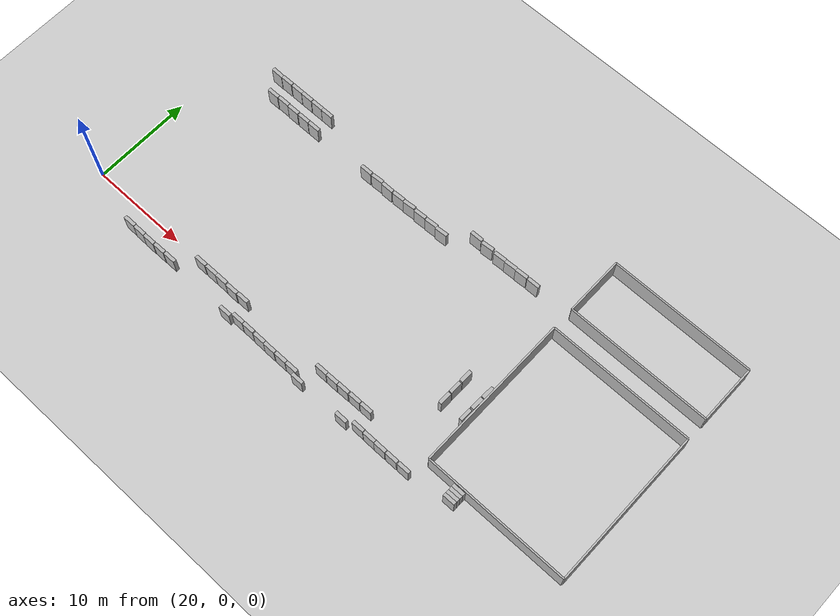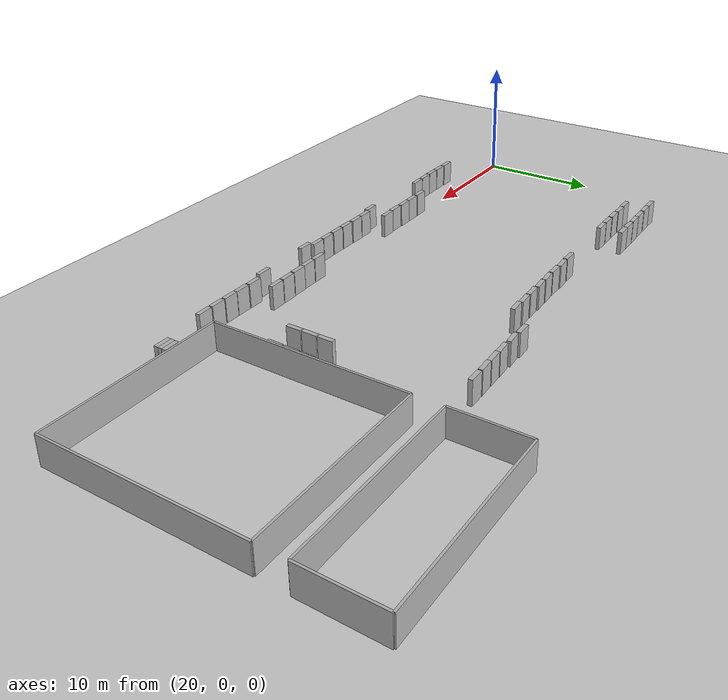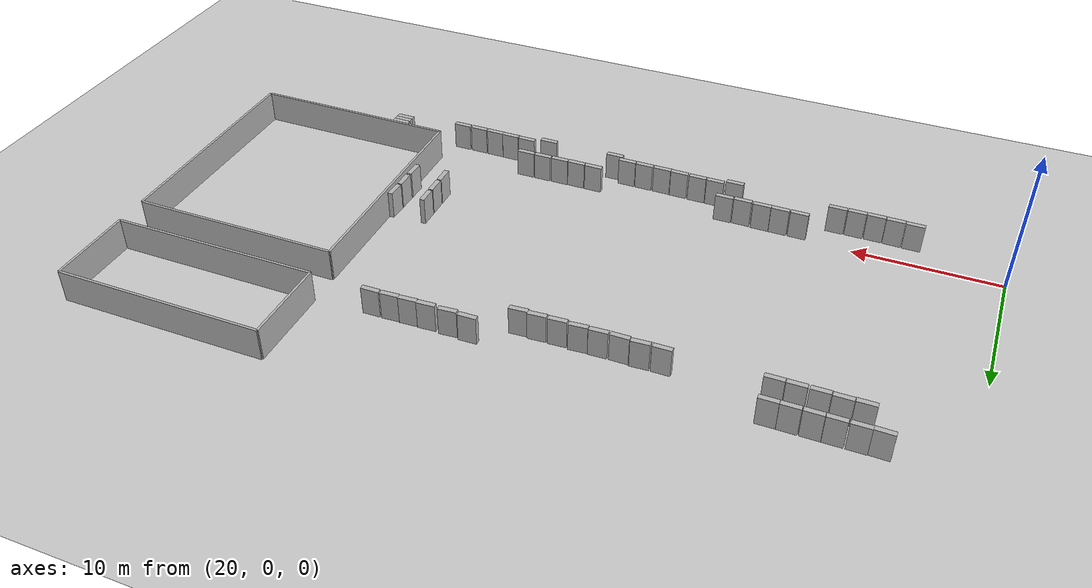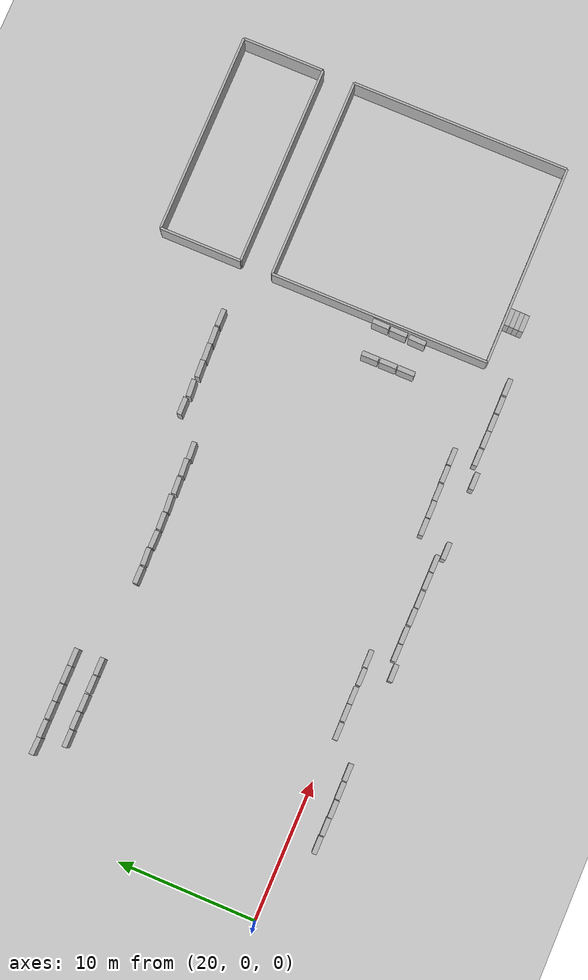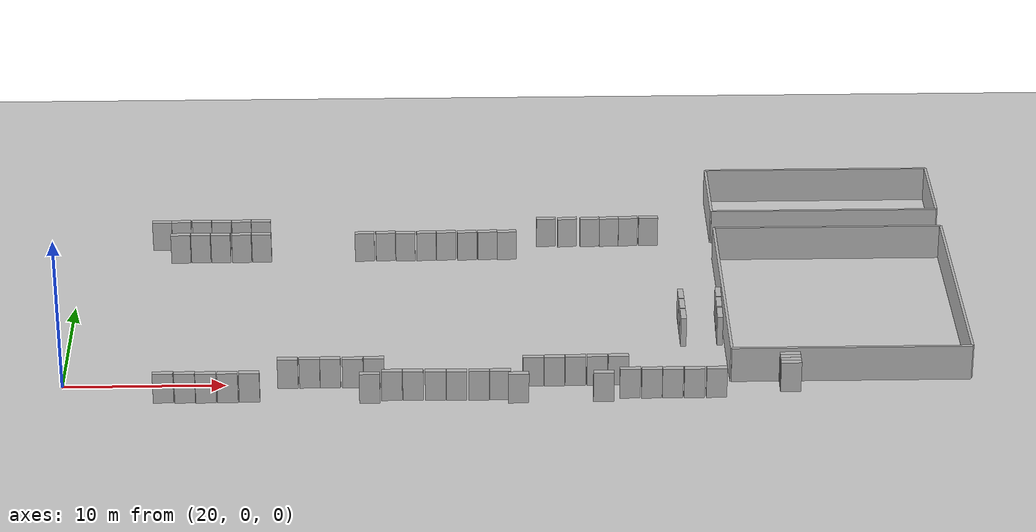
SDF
<sdf version="1.6">
 <world name="default">
  <model name="ground_plane">
   <static>1</static>
   <link name="link">
    <collision name="collision">
     <geometry><plane><normal>0 0 1</normal><size>100 100</size></plane></geometry>
     <surface><friction><ode><mu>100</mu><mu2>50</mu2></ode></friction></surface>
    </collision>
    <visual name="visual">
     <cast_shadows>0</cast_shadows>
     <geometry><plane><normal>0 0 1</normal><size>100 100</size></plane></geometry>
     <material>
      <script><uri>file://media/materials/scripts/gazebo.material</uri><name>Gazebo/Grey</name></script>
     </material>
    </visual>
   </link>
  </model>
  <model name="model_1">
   <pose>60.9 0 1 0 -0 0</pose>
   <link name="Wall_0">
    <pose>7.369 0 0 0 -0 0</pose>
    <collision name="Wall_0_Collision"><geometry><box><size>14.738 0.169 2.5</size></box></geometry></collision>
    <visual name="Wall_0_Visual"><geometry><box><size>14.738 0.169 2.5</size></box></geometry></visual>
   </link>
   <link name="Wall_1">
    <pose>7.369 16 0 0 -0 0</pose>
    <collision name="Wall_1_Collision"><geometry><box><size>14.738 0.169 2.5</size></box></geometry></collision>
    <visual name="Wall_1_Visual"><geometry><box><size>14.738 0.169 2.5</size></box></geometry></visual>
   </link>
   <link name="Wall_2">
    <pose>0 8 0 0 -0 1.5707</pose>
    <collision name="Wall_2_Collision"><geometry><box><size>16 0.169 2.5</size></box></geometry></collision>
    <visual name="Wall_2_Visual"><geometry><box><size>16 0.169 2.5</size></box></geometry></visual>
   </link>
   <link name="Wall_3">
    <pose>14.738 8 0 0 -0 1.5707</pose>
    <collision name="Wall_3_Collision"><geometry><box><size>16 0.169 2.5</size></box></geometry></collision>
    <visual name="Wall_3_Visual"><geometry><box><size>16 0.169 2.5</size></box></geometry></visual>
   </link>
   <static>1</static>
  </model>
  <model name="model_5">
   <pose>60.9 18.362 1 0 -0 0</pose>
   <link name="Wall_0">
    <pose>7.369 0 0 0 -0 0</pose>
    <collision name="Wall_0_Collision"><geometry><box><size>14.738 0.169 2.5</size></box></geometry></collision>
    <visual name="Wall_0_Visual"><geometry><box><size>14.738 0.169 2.5</size></box></geometry></visual>
   </link>
   <link name="Wall_1">
    <pose>7.369 6 0 0 -0 0</pose>
    <collision name="Wall_1_Collision"><geometry><box><size>14.738 0.169 2.5</size></box></geometry></collision>
    <visual name="Wall_1_Visual"><geometry><box><size>14.738 0.169 2.5</size></box></geometry></visual>
   </link>
   <link name="Wall_2">
    <pose>0 3 0 0 -0 1.5707</pose>
    <collision name="Wall_2_Collision"><geometry><box><size>6 0.169 2.5</size></box></geometry></collision>
    <visual name="Wall_2_Visual"><geometry><box><size>6 0.169 2.5</size></box></geometry></visual>
   </link>
   <link name="Wall_3">
    <pose>14.738 3 0 0 -0 1.5707</pose>
    <collision name="Wall_3_Collision"><geometry><box><size>6 0.169 2.5</size></box></geometry></collision>
    <visual name="Wall_3_Visual"><geometry><box><size>6 0.169 2.5</size></box></geometry></visual>
   </link>
   <static>1</static>
  </model>
  <model name="unit_box_clone_0">
   <pose>26.3118 -1.88538 0.999997 0 -6e-06 -0.000111</pose>
   <link name="link">
    <inertial>
     <mass>1</mass>
     <inertia>
      <ixx>0.166667</ixx>
      <ixy>0</ixy>
      <ixz>0</ixz>
      <iyy>0.166667</iyy>
      <iyz>0</iyz>
      <izz>0.166667</izz>
     </inertia>
    </inertial>
    <collision name="collision"><geometry><box><size>1.25 0.35 2</size></box></geometry></collision>
    <visual name="visual"><geometry><box><size>1.25 0.35 2</size></box></geometry></visual>
   </link>
  </model>
  <model name="unit_box_clone_6">
   <pose>54.6046 -1.902 0.999998 0 3e-06 6.1e-05</pose>
   <link name="link">
    <inertial>
     <mass>1</mass>
     <inertia>
      <ixx>0.166667</ixx>
      <ixy>0</ixy>
      <ixz>0</ixz>
      <iyy>0.166667</iyy>
      <iyz>0</iyz>
      <izz>0.166667</izz>
     </inertia>
    </inertial>
    <collision name="collision"><geometry><box><size>1.25 0.35 2</size></box></geometry></collision>
    <visual name="visual"><geometry><box><size>1.25 0.35 2</size></box></geometry></visual>
   </link>
  </model>
  <model name="unit_box_clone_11_clone_0">
   <pose>56.7525 18.0942 1 0 -0 0.013152</pose>
   <link name="link">
    <inertial>
     <mass>1</mass>
     <inertia>
      <ixx>0.166667</ixx>
      <ixy>0</ixy>
      <ixz>0</ixz>
      <iyy>0.166667</iyy>
      <iyz>0</iyz>
      <izz>0.166667</izz>
     </inertia>
    </inertial>
    <collision name="collision"><geometry><box><size>1.25 0.35 2</size></box></geometry></collision>
    <visual name="visual"><geometry><box><size>1.25 0.35 2</size></box></geometry></visual>
   </link>
  </model>
  <model name="unit_box_clone_11_clone_1">
   <pose>55.4195 18.0661 0.999998 0 4e-06 0.055918</pose>
   <link name="link">
    <inertial>
     <mass>1</mass>
     <inertia>
      <ixx>0.166667</ixx>
      <ixy>0</ixy>
      <ixz>0</ixz>
      <iyy>0.166667</iyy>
      <iyz>0</iyz>
      <izz>0.166667</izz>
     </inertia>
    </inertial>
    <collision name="collision"><geometry><box><size>1.25 0.35 2</size></box></geometry></collision>
    <visual name="visual"><geometry><box><size>1.25 0.35 2</size></box></geometry></visual>
   </link>
  </model>
  <model name="unit_box_clone_11_clone_2">
   <pose>54.1686 18.0364 0.999995 0 2e-06 0.056728</pose>
   <link name="link">
    <inertial>
     <mass>1</mass>
     <inertia>
      <ixx>0.166667</ixx>
      <ixy>0</ixy>
      <ixz>0</ixz>
      <iyy>0.166667</iyy>
      <iyz>0</iyz>
      <izz>0.166667</izz>
     </inertia>
    </inertial>
    <collision name="collision"><geometry><box><size>1.25 0.35 2</size></box></geometry></collision>
    <visual name="visual"><geometry><box><size>1.25 0.35 2</size></box></geometry></visual>
   </link>
  </model>
  <model name="unit_box_clone_11_clone_3">
   <pose>52.9179 18.008 0.999998 0 -3e-06 0.056653</pose>
   <link name="link">
    <inertial>
     <mass>1</mass>
     <inertia>
      <ixx>0.166667</ixx>
      <ixy>0</ixy>
      <ixz>0</ixz>
      <iyy>0.166667</iyy>
      <iyz>0</iyz>
      <izz>0.166667</izz>
     </inertia>
    </inertial>
    <collision name="collision"><geometry><box><size>1.25 0.35 2</size></box></geometry></collision>
    <visual name="visual"><geometry><box><size>1.25 0.35 2</size></box></geometry></visual>
   </link>
  </model>
  <model name="unit_box_clone_11_clone_4">
   <pose>51.4407 18.0271 0.999996 0 2e-06 0.07833</pose>
   <link name="link">
    <inertial>
     <mass>1</mass>
     <inertia>
      <ixx>0.166667</ixx>
      <ixy>0</ixy>
      <ixz>0</ixz>
      <iyy>0.166667</iyy>
      <iyz>0</iyz>
      <izz>0.166667</izz>
     </inertia>
    </inertial>
    <collision name="collision"><geometry><box><size>1.25 0.35 2</size></box></geometry></collision>
    <visual name="visual"><geometry><box><size>1.25 0.35 2</size></box></geometry></visual>
   </link>
  </model>
  <model name="unit_box_clone_11_clone_5">
   <pose>50.0739 18.0916 1 0 -0 0.01582</pose>
   <link name="link">
    <inertial>
     <mass>1</mass>
     <inertia>
      <ixx>0.166667</ixx>
      <ixy>0</ixy>
      <ixz>0</ixz>
      <iyy>0.166667</iyy>
      <iyz>0</iyz>
      <izz>0.166667</izz>
     </inertia>
    </inertial>
    <collision name="collision"><geometry><box><size>1.25 0.35 2</size></box></geometry></collision>
    <visual name="visual"><geometry><box><size>1.25 0.35 2</size></box></geometry></visual>
   </link>
  </model>
  <model name="unit_box_clone_11_clone_6">
   <pose>47.4592 16.3049 1 0 -1e-06 0.0693</pose>
   <link name="link">
    <inertial>
     <mass>1</mass>
     <inertia>
      <ixx>0.166667</ixx>
      <ixy>0</ixy>
      <ixz>0</ixz>
      <iyy>0.166667</iyy>
      <iyz>0</iyz>
      <izz>0.166667</izz>
     </inertia>
    </inertial>
    <collision name="collision"><geometry><box><size>1.25 0.35 2</size></box></geometry></collision>
    <visual name="visual"><geometry><box><size>1.25 0.35 2</size></box></geometry></visual>
   </link>
  </model>
  <model name="unit_box_clone_11_clone_7">
   <pose>46.2039 16.332 1 -1e-06 -0 0.070592</pose>
   <link name="link">
    <inertial>
     <mass>1</mass>
     <inertia>
      <ixx>0.166667</ixx>
      <ixy>0</ixy>
      <ixz>0</ixz>
      <iyy>0.166667</iyy>
      <iyz>0</iyz>
      <izz>0.166667</izz>
     </inertia>
    </inertial>
    <collision name="collision"><geometry><box><size>1.25 0.35 2</size></box></geometry></collision>
    <visual name="visual"><geometry><box><size>1.25 0.35 2</size></box></geometry></visual>
   </link>
  </model>
  <model name="unit_box_clone_11_clone_8">
   <pose>44.8815 16.2979 0.999996 0 2e-06 0.058553</pose>
   <link name="link">
    <inertial>
     <mass>1</mass>
     <inertia>
      <ixx>0.166667</ixx>
      <ixy>0</ixy>
      <ixz>0</ixz>
      <iyy>0.166667</iyy>
      <iyz>0</iyz>
      <izz>0.166667</izz>
     </inertia>
    </inertial>
    <collision name="collision"><geometry><box><size>1.25 0.35 2</size></box></geometry></collision>
    <visual name="visual"><geometry><box><size>1.25 0.35 2</size></box></geometry></visual>
   </link>
  </model>
  <model name="unit_box_clone_11_clone_9">
   <pose>43.5275 16.3169 0.999997 0 6e-06 0.079775</pose>
   <link name="link">
    <inertial>
     <mass>1</mass>
     <inertia>
      <ixx>0.166667</ixx>
      <ixy>0</ixy>
      <ixz>0</ixz>
      <iyy>0.166667</iyy>
      <iyz>0</iyz>
      <izz>0.166667</izz>
     </inertia>
    </inertial>
    <collision name="collision"><geometry><box><size>1.25 0.35 2</size></box></geometry></collision>
    <visual name="visual"><geometry><box><size>1.25 0.35 2</size></box></geometry></visual>
   </link>
  </model>
  <model name="unit_box_clone_11_clone_10">
   <pose>42.2463 16.2883 0.999998 0 -4e-06 0.045982</pose>
   <link name="link">
    <inertial>
     <mass>1</mass>
     <inertia>
      <ixx>0.166667</ixx>
      <ixy>0</ixy>
      <ixz>0</ixz>
      <iyy>0.166667</iyy>
      <iyz>0</iyz>
      <izz>0.166667</izz>
     </inertia>
    </inertial>
    <collision name="collision"><geometry><box><size>1.25 0.35 2</size></box></geometry></collision>
    <visual name="visual"><geometry><box><size>1.25 0.35 2</size></box></geometry></visual>
   </link>
  </model>
  <model name="unit_box_clone_11_clone_11">
   <pose>40.894 16.2613 0.999996 0 6e-06 -1.3e-05</pose>
   <link name="link">
    <inertial>
     <mass>1</mass>
     <inertia>
      <ixx>0.166667</ixx>
      <ixy>0</ixy>
      <ixz>0</ixz>
      <iyy>0.166667</iyy>
      <iyz>0</iyz>
      <izz>0.166667</izz>
     </inertia>
    </inertial>
    <collision name="collision"><geometry><box><size>1.25 0.35 2</size></box></geometry></collision>
    <visual name="visual"><geometry><box><size>1.25 0.35 2</size></box></geometry></visual>
   </link>
  </model>
  <model name="unit_box_clone_11_clone_12">
   <pose>39.5983 16.3008 0.999998 0 3e-06 0.054722</pose>
   <link name="link">
    <inertial>
     <mass>1</mass>
     <inertia>
      <ixx>0.166667</ixx>
      <ixy>0</ixy>
      <ixz>0</ixz>
      <iyy>0.166667</iyy>
      <iyz>0</iyz>
      <izz>0.166667</izz>
     </inertia>
    </inertial>
    <collision name="collision"><geometry><box><size>1.25 0.35 2</size></box></geometry></collision>
    <visual name="visual"><geometry><box><size>1.25 0.35 2</size></box></geometry></visual>
   </link>
  </model>
  <model name="unit_box_clone_11_clone_13">
   <pose>38.2509 16.2695 0.999997 1e-06 5e-06 0.003888</pose>
   <link name="link">
    <inertial>
     <mass>1</mass>
     <inertia>
      <ixx>0.166667</ixx>
      <ixy>0</ixy>
      <ixz>0</ixz>
      <iyy>0.166667</iyy>
      <iyz>0</iyz>
      <izz>0.166667</izz>
     </inertia>
    </inertial>
    <collision name="collision"><geometry><box><size>1.25 0.35 2</size></box></geometry></collision>
    <visual name="visual"><geometry><box><size>1.25 0.35 2</size></box></geometry></visual>
   </link>
  </model>
  <model name="unit_box_clone_1_clone_6">
   <pose>27.6215 -1.91658 0.999996 0 6e-06 2.3e-05</pose>
   <link name="link">
    <inertial>
     <mass>1</mass>
     <inertia>
      <ixx>0.166667</ixx>
      <ixy>0</ixy>
      <ixz>0</ixz>
      <iyy>0.166667</iyy>
      <iyz>0</iyz>
      <izz>0.166667</izz>
     </inertia>
    </inertial>
    <collision name="collision"><geometry><box><size>1.25 0.35 2</size></box></geometry></collision>
    <visual name="visual"><geometry><box><size>1.25 0.35 2</size></box></geometry></visual>
   </link>
  </model>
  <model name="unit_box_clone_1_clone_8">
   <pose>28.8992 -1.9425 1 1e-06 -0 0</pose>
   <link name="link">
    <inertial>
     <mass>1</mass>
     <inertia>
      <ixx>0.166667</ixx>
      <ixy>0</ixy>
      <ixz>0</ixz>
      <iyy>0.166667</iyy>
      <iyz>0</iyz>
      <izz>0.166667</izz>
     </inertia>
    </inertial>
    <collision name="collision"><geometry><box><size>1.25 0.35 2</size></box></geometry></collision>
    <visual name="visual"><geometry><box><size>1.25 0.35 2</size></box></geometry></visual>
   </link>
  </model>
  <model name="unit_box_clone_1_clone_9">
   <pose>30.2126 -1.92359 0.999996 0 6e-06 -1.4e-05</pose>
   <link name="link">
    <inertial>
     <mass>1</mass>
     <inertia>
      <ixx>0.166667</ixx>
      <ixy>0</ixy>
      <ixz>0</ixz>
      <iyy>0.166667</iyy>
      <iyz>0</iyz>
      <izz>0.166667</izz>
     </inertia>
    </inertial>
    <collision name="collision"><geometry><box><size>1.25 0.35 2</size></box></geometry></collision>
    <visual name="visual"><geometry><box><size>1.25 0.35 2</size></box></geometry></visual>
   </link>
  </model>
  <model name="unit_box_clone_1_clone_10">
   <pose>31.5258 -1.90826 0.999998 0 -3e-06 -6.1e-05</pose>
   <link name="link">
    <inertial>
     <mass>1</mass>
     <inertia>
      <ixx>0.166667</ixx>
      <ixy>0</ixy>
      <ixz>0</ixz>
      <iyy>0.166667</iyy>
      <iyz>0</iyz>
      <izz>0.166667</izz>
     </inertia>
    </inertial>
    <collision name="collision"><geometry><box><size>1.25 0.35 2</size></box></geometry></collision>
    <visual name="visual"><geometry><box><size>1.25 0.35 2</size></box></geometry></visual>
   </link>
  </model>
  <model name="unit_box_clone_1_clone_7">
   <pose>40.1545 -1.88356 0.999996 -0 -6e-06 -1.3e-05</pose>
   <link name="link">
    <inertial>
     <mass>1</mass>
     <inertia>
      <ixx>0.166667</ixx>
      <ixy>0</ixy>
      <ixz>0</ixz>
      <iyy>0.166667</iyy>
      <iyz>0</iyz>
      <izz>0.166667</izz>
     </inertia>
    </inertial>
    <collision name="collision"><geometry><box><size>1.25 0.35 2</size></box></geometry></collision>
    <visual name="visual"><geometry><box><size>1.25 0.35 2</size></box></geometry></visual>
   </link>
  </model>
  <model name="unit_box_clone_1_clone_16">
   <pose>41.444 -1.88485 0.999996 -0 2e-06 -8.6e-05</pose>
   <link name="link">
    <inertial>
     <mass>1</mass>
     <inertia>
      <ixx>0.166667</ixx>
      <ixy>0</ixy>
      <ixz>0</ixz>
      <iyy>0.166667</iyy>
      <iyz>0</iyz>
      <izz>0.166667</izz>
     </inertia>
    </inertial>
    <collision name="collision"><geometry><box><size>1.25 0.35 2</size></box></geometry></collision>
    <visual name="visual"><geometry><box><size>1.25 0.35 2</size></box></geometry></visual>
   </link>
  </model>
  <model name="unit_box_clone_1_clone_17">
   <pose>42.7968 -1.91646 1 -1e-06 -0 1e-05</pose>
   <link name="link">
    <inertial>
     <mass>1</mass>
     <inertia>
      <ixx>0.166667</ixx>
      <ixy>0</ixy>
      <ixz>0</ixz>
      <iyy>0.166667</iyy>
      <iyz>0</iyz>
      <izz>0.166667</izz>
     </inertia>
    </inertial>
    <collision name="collision"><geometry><box><size>1.25 0.35 2</size></box></geometry></collision>
    <visual name="visual"><geometry><box><size>1.25 0.35 2</size></box></geometry></visual>
   </link>
  </model>
  <model name="unit_box_clone_1_clone_18">
   <pose>44.0856 -1.94196 0.999996 0 -6e-06 5.5e-05</pose>
   <link name="link">
    <inertial>
     <mass>1</mass>
     <inertia>
      <ixx>0.166667</ixx>
      <ixy>0</ixy>
      <ixz>0</ixz>
      <iyy>0.166667</iyy>
      <iyz>0</iyz>
      <izz>0.166667</izz>
     </inertia>
    </inertial>
    <collision name="collision"><geometry><box><size>1.25 0.35 2</size></box></geometry></collision>
    <visual name="visual"><geometry><box><size>1.25 0.35 2</size></box></geometry></visual>
   </link>
  </model>
  <model name="unit_box_clone_1_clone_19">
   <pose>45.4366 -1.94203 0.999996 0 6e-06 -3.6e-05</pose>
   <link name="link">
    <inertial>
     <mass>1</mass>
     <inertia>
      <ixx>0.166667</ixx>
      <ixy>0</ixy>
      <ixz>0</ixz>
      <iyy>0.166667</iyy>
      <iyz>0</iyz>
      <izz>0.166667</izz>
     </inertia>
    </inertial>
    <collision name="collision"><geometry><box><size>1.25 0.35 2</size></box></geometry></collision>
    <visual name="visual"><geometry><box><size>1.25 0.35 2</size></box></geometry></visual>
   </link>
  </model>
  <model name="unit_box_clone_1_clone_22">
   <pose>46.7262 -1.94249 1 -0 -0 -4.8e-05</pose>
   <link name="link">
    <inertial>
     <mass>1</mass>
     <inertia>
      <ixx>0.166667</ixx>
      <ixy>0</ixy>
      <ixz>0</ixz>
      <iyy>0.166667</iyy>
      <iyz>0</iyz>
      <izz>0.166667</izz>
     </inertia>
    </inertial>
    <collision name="collision"><geometry><box><size>1.25 0.35 2</size></box></geometry></collision>
    <visual name="visual"><geometry><box><size>1.25 0.35 2</size></box></geometry></visual>
   </link>
  </model>
  <model name="unit_box_clone_1_clone_23">
   <pose>33.7971 -0.269884 1 -1e-06 -0 4e-06</pose>
   <link name="link">
    <inertial>
     <mass>1</mass>
     <inertia>
      <ixx>0.166667</ixx>
      <ixy>0</ixy>
      <ixz>0</ixz>
      <iyy>0.166667</iyy>
      <iyz>0</iyz>
      <izz>0.166667</izz>
     </inertia>
    </inertial>
    <collision name="collision"><geometry><box><size>1.25 0.35 2</size></box></geometry></collision>
    <visual name="visual"><geometry><box><size>1.25 0.35 2</size></box></geometry></visual>
   </link>
  </model>
  <model name="unit_box_clone_1_clone_24">
   <pose>35.1254 -0.260039 1 -1e-06 0 1.8e-05</pose>
   <link name="link">
    <inertial>
     <mass>1</mass>
     <inertia>
      <ixx>0.166667</ixx>
      <ixy>0</ixy>
      <ixz>0</ixz>
      <iyy>0.166667</iyy>
      <iyz>0</iyz>
      <izz>0.166667</izz>
     </inertia>
    </inertial>
    <collision name="collision"><geometry><box><size>1.25 0.35 2</size></box></geometry></collision>
    <visual name="visual"><geometry><box><size>1.25 0.35 2</size></box></geometry></visual>
   </link>
  </model>
  <model name="unit_box_clone_1_clone_25">
   <pose>36.3934 -0.260366 0.999996 0 -6e-06 4e-05</pose>
   <link name="link">
    <inertial>
     <mass>1</mass>
     <inertia>
      <ixx>0.166667</ixx>
      <ixy>0</ixy>
      <ixz>0</ixz>
      <iyy>0.166667</iyy>
      <iyz>0</iyz>
      <izz>0.166667</izz>
     </inertia>
    </inertial>
    <collision name="collision"><geometry><box><size>1.25 0.35 2</size></box></geometry></collision>
    <visual name="visual"><geometry><box><size>1.25 0.35 2</size></box></geometry></visual>
   </link>
  </model>
  <model name="unit_box_clone_1_clone_26">
   <pose>37.7551 -0.304386 0.999996 0 6e-06 4.3e-05</pose>
   <link name="link">
    <inertial>
     <mass>1</mass>
     <inertia>
      <ixx>0.166667</ixx>
      <ixy>0</ixy>
      <ixz>0</ixz>
      <iyy>0.166667</iyy>
      <iyz>0</iyz>
      <izz>0.166667</izz>
     </inertia>
    </inertial>
    <collision name="collision"><geometry><box><size>1.25 0.35 2</size></box></geometry></collision>
    <visual name="visual"><geometry><box><size>1.25 0.35 2</size></box></geometry></visual>
   </link>
  </model>
  <model name="unit_box_clone_1_clone_27">
   <pose>39.0548 -0.260579 0.999998 0 -3e-06 -2.9e-05</pose>
   <link name="link">
    <inertial>
     <mass>1</mass>
     <inertia>
      <ixx>0.166667</ixx>
      <ixy>0</ixy>
      <ixz>0</ixz>
      <iyy>0.166667</iyy>
      <iyz>0</iyz>
      <izz>0.166667</izz>
     </inertia>
    </inertial>
    <collision name="collision"><geometry><box><size>1.25 0.35 2</size></box></geometry></collision>
    <visual name="visual"><geometry><box><size>1.25 0.35 2</size></box></geometry></visual>
   </link>
  </model>
  <model name="unit_box_clone_1_clone_28">
   <pose>48.7566 -0.324881 0.999996 0 -6e-06 1.9e-05</pose>
   <link name="link">
    <inertial>
     <mass>1</mass>
     <inertia>
      <ixx>0.166667</ixx>
      <ixy>0</ixy>
      <ixz>0</ixz>
      <iyy>0.166667</iyy>
      <iyz>0</iyz>
      <izz>0.166667</izz>
     </inertia>
    </inertial>
    <collision name="collision"><geometry><box><size>1.25 0.35 2</size></box></geometry></collision>
    <visual name="visual"><geometry><box><size>1.25 0.35 2</size></box></geometry></visual>
   </link>
  </model>
  <model name="unit_box_clone_1_clone_29">
   <pose>50.0592 -0.326024 0.999996 0 -6e-06 4.6e-05</pose>
   <link name="link">
    <inertial>
     <mass>1</mass>
     <inertia>
      <ixx>0.166667</ixx>
      <ixy>0</ixy>
      <ixz>0</ixz>
      <iyy>0.166667</iyy>
      <iyz>0</iyz>
      <izz>0.166667</izz>
     </inertia>
    </inertial>
    <collision name="collision"><geometry><box><size>1.25 0.35 2</size></box></geometry></collision>
    <visual name="visual"><geometry><box><size>1.25 0.35 2</size></box></geometry></visual>
   </link>
  </model>
  <model name="unit_box_clone_1_clone_30">
   <pose>51.3296 -0.296932 0.999996 0 6e-06 -3.6e-05</pose>
   <link name="link">
    <inertial>
     <mass>1</mass>
     <inertia>
      <ixx>0.166667</ixx>
      <ixy>0</ixy>
      <ixz>0</ixz>
      <iyy>0.166667</iyy>
      <iyz>0</iyz>
      <izz>0.166667</izz>
     </inertia>
    </inertial>
    <collision name="collision"><geometry><box><size>1.25 0.35 2</size></box></geometry></collision>
    <visual name="visual"><geometry><box><size>1.25 0.35 2</size></box></geometry></visual>
   </link>
  </model>
  <model name="unit_box_clone_1_clone_31">
   <pose>52.6602 -0.26924 0.999996 -0 -2e-06 8.4e-05</pose>
   <link name="link">
    <inertial>
     <mass>1</mass>
     <inertia>
      <ixx>0.166667</ixx>
      <ixy>0</ixy>
      <ixz>0</ixz>
      <iyy>0.166667</iyy>
      <iyz>0</iyz>
      <izz>0.166667</izz>
     </inertia>
    </inertial>
    <collision name="collision"><geometry><box><size>1.25 0.35 2</size></box></geometry></collision>
    <visual name="visual"><geometry><box><size>1.25 0.35 2</size></box></geometry></visual>
   </link>
  </model>
  <model name="unit_box_clone_1_clone_32">
   <pose>53.9646 -0.259585 1 0 -0 0.000135</pose>
   <link name="link">
    <inertial>
     <mass>1</mass>
     <inertia>
      <ixx>0.166667</ixx>
      <ixy>0</ixy>
      <ixz>0</ixz>
      <iyy>0.166667</iyy>
      <iyz>0</iyz>
      <izz>0.166667</izz>
     </inertia>
    </inertial>
    <collision name="collision"><geometry><box><size>1.25 0.35 2</size></box></geometry></collision>
    <visual name="visual"><geometry><box><size>1.25 0.35 2</size></box></geometry></visual>
   </link>
  </model>
  <model name="unit_box_clone_1_clone_33">
   <pose>55.9279 -1.93098 0.999996 0 -6e-06 1.8e-05</pose>
   <link name="link">
    <inertial>
     <mass>1</mass>
     <inertia>
      <ixx>0.166667</ixx>
      <ixy>0</ixy>
      <ixz>0</ixz>
      <iyy>0.166667</iyy>
      <iyz>0</iyz>
      <izz>0.166667</izz>
     </inertia>
    </inertial>
    <collision name="collision"><geometry><box><size>1.25 0.35 2</size></box></geometry></collision>
    <visual name="visual"><geometry><box><size>1.25 0.35 2</size></box></geometry></visual>
   </link>
  </model>
  <model name="unit_box_clone_1_clone_34">
   <pose>57.191 -1.94229 1 0 -0 0.000143</pose>
   <link name="link">
    <inertial>
     <mass>1</mass>
     <inertia>
      <ixx>0.166667</ixx>
      <ixy>0</ixy>
      <ixz>0</ixz>
      <iyy>0.166667</iyy>
      <iyz>0</iyz>
      <izz>0.166667</izz>
     </inertia>
    </inertial>
    <collision name="collision"><geometry><box><size>1.25 0.35 2</size></box></geometry></collision>
    <visual name="visual"><geometry><box><size>1.25 0.35 2</size></box></geometry></visual>
   </link>
  </model>
  <model name="unit_box_clone_1_clone_35">
   <pose>58.515 -1.94236 0.999998 -0 -4e-06 -0.000153</pose>
   <link name="link">
    <inertial>
     <mass>1</mass>
     <inertia>
      <ixx>0.166667</ixx>
      <ixy>0</ixy>
      <ixz>0</ixz>
      <iyy>0.166667</iyy>
      <iyz>0</iyz>
      <izz>0.166667</izz>
     </inertia>
    </inertial>
    <collision name="collision"><geometry><box><size>1.25 0.35 2</size></box></geometry></collision>
    <visual name="visual"><geometry><box><size>1.25 0.35 2</size></box></geometry></visual>
   </link>
  </model>
  <model name="unit_box_clone_1_clone_36">
   <pose>59.8662 -1.93541 1 -1e-06 0 -3e-06</pose>
   <link name="link">
    <inertial>
     <mass>1</mass>
     <inertia>
      <ixx>0.166667</ixx>
      <ixy>0</ixy>
      <ixz>0</ixz>
      <iyy>0.166667</iyy>
      <iyz>0</iyz>
      <izz>0.166667</izz>
     </inertia>
    </inertial>
    <collision name="collision"><geometry><box><size>1.25 0.35 2</size></box></geometry></collision>
    <visual name="visual"><geometry><box><size>1.25 0.35 2</size></box></geometry></visual>
   </link>
  </model>
  <model name="unit_box_clone_1_clone_37">
   <pose>64.4557 -0.259713 0.999996 0 -2e-06 -9.7e-05</pose>
   <link name="link">
    <inertial>
     <mass>1</mass>
     <inertia>
      <ixx>0.166667</ixx>
      <ixy>0</ixy>
      <ixz>0</ixz>
      <iyy>0.166667</iyy>
      <iyz>0</iyz>
      <izz>0.166667</izz>
     </inertia>
    </inertial>
    <collision name="collision"><geometry><box><size>1.25 0.35 2</size></box></geometry></collision>
    <visual name="visual"><geometry><box><size>1.25 0.35 2</size></box></geometry></visual>
   </link>
  </model>
  <model name="unit_box_clone_1_clone_38">
   <pose>64.4499 -0.609721 0.999996 0 -2e-06 -9.5e-05</pose>
   <link name="link">
    <inertial>
     <mass>1</mass>
     <inertia>
      <ixx>0.166667</ixx>
      <ixy>0</ixy>
      <ixz>0</ixz>
      <iyy>0.166667</iyy>
      <iyz>0</iyz>
      <izz>0.166667</izz>
     </inertia>
    </inertial>
    <collision name="collision"><geometry><box><size>1.25 0.35 2</size></box></geometry></collision>
    <visual name="visual"><geometry><box><size>1.25 0.35 2</size></box></geometry></visual>
   </link>
  </model>
  <model name="unit_box_clone_1_clone_39">
   <pose>64.4459 -0.95993 0.999996 -0 -2e-06 2.4e-05</pose>
   <link name="link">
    <inertial>
     <mass>1</mass>
     <inertia>
      <ixx>0.166667</ixx>
      <ixy>0</ixy>
      <ixz>0</ixz>
      <iyy>0.166667</iyy>
      <iyz>0</iyz>
      <izz>0.166667</izz>
     </inertia>
    </inertial>
    <collision name="collision"><geometry><box><size>1.25 0.35 2</size></box></geometry></collision>
    <visual name="visual"><geometry><box><size>1.25 0.35 2</size></box></geometry></visual>
   </link>
  </model>
  <model name="unit_box_clone_1_clone_40">
   <pose>64.4382 -1.31008 1 -1e-06 -0 -6e-06</pose>
   <link name="link">
    <inertial>
     <mass>1</mass>
     <inertia>
      <ixx>0.166667</ixx>
      <ixy>0</ixy>
      <ixz>0</ixz>
      <iyy>0.166667</iyy>
      <iyz>0</iyz>
      <izz>0.166667</izz>
     </inertia>
    </inertial>
    <collision name="collision"><geometry><box><size>1.25 0.35 2</size></box></geometry></collision>
    <visual name="visual"><geometry><box><size>1.25 0.35 2</size></box></geometry></visual>
   </link>
  </model>
  <model name="unit_box_clone_1_clone_41">
   <pose>25.0388 18.0857 1 -0 1e-06 -0.023169</pose>
   <link name="link">
    <inertial>
     <mass>1</mass>
     <inertia>
      <ixx>0.166667</ixx>
      <ixy>0</ixy>
      <ixz>0</ixz>
      <iyy>0.166667</iyy>
      <iyz>0</iyz>
      <izz>0.166667</izz>
     </inertia>
    </inertial>
    <collision name="collision"><geometry><box><size>1.25 0.35 2</size></box></geometry></collision>
    <visual name="visual"><geometry><box><size>1.25 0.35 2</size></box></geometry></visual>
   </link>
  </model>
  <model name="unit_box_clone_1_clone_42">
   <pose>26.2926 18.1022 0.99999 -0 2e-06 -0.000423</pose>
   <link name="link">
    <inertial>
     <mass>1</mass>
     <inertia>
      <ixx>0.166667</ixx>
      <ixy>0</ixy>
      <ixz>0</ixz>
      <iyy>0.166667</iyy>
      <iyz>0</iyz>
      <izz>0.166667</izz>
     </inertia>
    </inertial>
    <collision name="collision"><geometry><box><size>1.25 0.35 2</size></box></geometry></collision>
    <visual name="visual"><geometry><box><size>1.25 0.35 2</size></box></geometry></visual>
   </link>
  </model>
  <model name="unit_box_clone_1_clone_43">
   <pose>27.6286 18.1024 0.999996 -0 2e-06 -7.7e-05</pose>
   <link name="link">
    <inertial>
     <mass>1</mass>
     <inertia>
      <ixx>0.166667</ixx>
      <ixy>0</ixy>
      <ixz>0</ixz>
      <iyy>0.166667</iyy>
      <iyz>0</iyz>
      <izz>0.166667</izz>
     </inertia>
    </inertial>
    <collision name="collision"><geometry><box><size>1.25 0.35 2</size></box></geometry></collision>
    <visual name="visual"><geometry><box><size>1.25 0.35 2</size></box></geometry></visual>
   </link>
  </model>
  <model name="unit_box_clone_1_clone_44">
   <pose>28.9017 18.1019 0.999996 -0 -2e-06 7.2e-05</pose>
   <link name="link">
    <inertial>
     <mass>1</mass>
     <inertia>
      <ixx>0.166667</ixx>
      <ixy>0</ixy>
      <ixz>0</ixz>
      <iyy>0.166667</iyy>
      <iyz>0</iyz>
      <izz>0.166667</izz>
     </inertia>
    </inertial>
    <collision name="collision"><geometry><box><size>1.25 0.35 2</size></box></geometry></collision>
    <visual name="visual"><geometry><box><size>1.25 0.35 2</size></box></geometry></visual>
   </link>
  </model>
  <model name="unit_box_clone_1_clone_45">
   <pose>30.2063 18.1022 1 0 -0 3e-06</pose>
   <link name="link">
    <inertial>
     <mass>1</mass>
     <inertia>
      <ixx>0.166667</ixx>
      <ixy>0</ixy>
      <ixz>0</ixz>
      <iyy>0.166667</iyy>
      <iyz>0</iyz>
      <izz>0.166667</izz>
     </inertia>
    </inertial>
    <collision name="collision"><geometry><box><size>1.25 0.35 2</size></box></geometry></collision>
    <visual name="visual"><geometry><box><size>1.25 0.35 2</size></box></geometry></visual>
   </link>
  </model>
  <model name="unit_box_clone_1_clone_47">
   <pose>26.3335 16.2599 0.999996 0 6e-06 -6.8e-05</pose>
   <link name="link">
    <inertial>
     <mass>1</mass>
     <inertia>
      <ixx>0.166667</ixx>
      <ixy>0</ixy>
      <ixz>0</ixz>
      <iyy>0.166667</iyy>
      <iyz>0</iyz>
      <izz>0.166667</izz>
     </inertia>
    </inertial>
    <collision name="collision"><geometry><box><size>1.25 0.35 2</size></box></geometry></collision>
    <visual name="visual"><geometry><box><size>1.25 0.35 2</size></box></geometry></visual>
   </link>
  </model>
  <model name="unit_box_clone_1_clone_48">
   <pose>27.6264 16.2924 1 1e-06 0 -8e-06</pose>
   <link name="link">
    <inertial>
     <mass>1</mass>
     <inertia>
      <ixx>0.166667</ixx>
      <ixy>0</ixy>
      <ixz>0</ixz>
      <iyy>0.166667</iyy>
      <iyz>0</iyz>
      <izz>0.166667</izz>
     </inertia>
    </inertial>
    <collision name="collision"><geometry><box><size>1.25 0.35 2</size></box></geometry></collision>
    <visual name="visual"><geometry><box><size>1.25 0.35 2</size></box></geometry></visual>
   </link>
  </model>
  <model name="unit_box_clone_1_clone_49">
   <pose>28.9216 16.2603 0.999998 -0 3e-06 -1.3e-05</pose>
   <link name="link">
    <inertial>
     <mass>1</mass>
     <inertia>
      <ixx>0.166667</ixx>
      <ixy>0</ixy>
      <ixz>0</ixz>
      <iyy>0.166667</iyy>
      <iyz>0</iyz>
      <izz>0.166667</izz>
     </inertia>
    </inertial>
    <collision name="collision"><geometry><box><size>1.25 0.35 2</size></box></geometry></collision>
    <visual name="visual"><geometry><box><size>1.25 0.35 2</size></box></geometry></visual>
   </link>
  </model>
  <model name="unit_box_clone_1_clone_50">
   <pose>30.2756 16.2598 0.999998 -0 -3e-06 -6.5e-05</pose>
   <link name="link">
    <inertial>
     <mass>1</mass>
     <inertia>
      <ixx>0.166667</ixx>
      <ixy>0</ixy>
      <ixz>0</ixz>
      <iyy>0.166667</iyy>
      <iyz>0</iyz>
      <izz>0.166667</izz>
     </inertia>
    </inertial>
    <collision name="collision"><geometry><box><size>1.25 0.35 2</size></box></geometry></collision>
    <visual name="visual"><geometry><box><size>1.25 0.35 2</size></box></geometry></visual>
   </link>
  </model>
  <model name="unit_box_clone_1_clone_51">
   <pose>31.5704 16.2602 0.999998 -0 -3e-06 -3.6e-05</pose>
   <link name="link">
    <inertial>
     <mass>1</mass>
     <inertia>
      <ixx>0.166667</ixx>
      <ixy>0</ixy>
      <ixz>0</ixz>
      <iyy>0.166667</iyy>
      <iyz>0</iyz>
      <izz>0.166667</izz>
     </inertia>
    </inertial>
    <collision name="collision"><geometry><box><size>1.25 0.35 2</size></box></geometry></collision>
    <visual name="visual"><geometry><box><size>1.25 0.35 2</size></box></geometry></visual>
   </link>
  </model>
  <model name="unit_box_clone_1_clone_52">
   <pose>31.4667 18.1023 1 0 -0 0.000257</pose>
   <link name="link">
    <inertial>
     <mass>1</mass>
     <inertia>
      <ixx>0.166667</ixx>
      <ixy>0</ixy>
      <ixz>0</ixz>
      <iyy>0.166667</iyy>
      <iyz>0</iyz>
      <izz>0.166667</izz>
     </inertia>
    </inertial>
    <collision name="collision"><geometry><box><size>1.25 0.35 2</size></box></geometry></collision>
    <visual name="visual"><geometry><box><size>1.25 0.35 2</size></box></geometry></visual>
   </link>
  </model>
  <model name="unit_box_clone_1_clone_53">
   <pose>38.8134 -2.17996 0.999996 -0 -2e-06 7.5e-05</pose>
   <link name="link">
    <inertial>
     <mass>1</mass>
     <inertia>
      <ixx>0.166667</ixx>
      <ixy>0</ixy>
      <ixz>0</ixz>
      <iyy>0.166667</iyy>
      <iyz>0</iyz>
      <izz>0.166667</izz>
     </inertia>
    </inertial>
    <collision name="collision"><geometry><box><size>1.25 0.35 2</size></box></geometry></collision>
    <visual name="visual"><geometry><box><size>1.25 0.35 2</size></box></geometry></visual>
   </link>
  </model>
  <model name="unit_box_clone_1_clone_54">
   <pose>47.8326 -2.34908 1 1e-06 -0 -9e-06</pose>
   <link name="link">
    <inertial>
     <mass>1</mass>
     <inertia>
      <ixx>0.166667</ixx>
      <ixy>0</ixy>
      <ixz>0</ixz>
      <iyy>0.166667</iyy>
      <iyz>0</iyz>
      <izz>0.166667</izz>
     </inertia>
    </inertial>
    <collision name="collision"><geometry><box><size>1.25 0.35 2</size></box></geometry></collision>
    <visual name="visual"><geometry><box><size>1.25 0.35 2</size></box></geometry></visual>
   </link>
  </model>
  <model name="unit_box_clone_1_clone_55">
   <pose>52.9882 -2.29618 0.999996 0 -2e-06 -6.9e-05</pose>
   <link name="link">
    <inertial>
     <mass>1</mass>
     <inertia>
      <ixx>0.166667</ixx>
      <ixy>0</ixy>
      <ixz>0</ixz>
      <iyy>0.166667</iyy>
      <iyz>0</iyz>
      <izz>0.166667</izz>
     </inertia>
    </inertial>
    <collision name="collision"><geometry><box><size>1.25 0.35 2</size></box></geometry></collision>
    <visual name="visual"><geometry><box><size>1.25 0.35 2</size></box></geometry></visual>
   </link>
  </model>
  <model name="unit_box_clone_1_clone_56_clone">
   <pose>60.5577 6.39704 0.999998 0 -4e-06 -1.59459</pose>
   <link name="link">
    <inertial>
     <mass>1</mass>
     <inertia>
      <ixx>0.166667</ixx>
      <ixy>0</ixy>
      <ixz>0</ixz>
      <iyy>0.166667</iyy>
      <iyz>0</iyz>
      <izz>0.166667</izz>
     </inertia>
    </inertial>
    <collision name="collision"><geometry><box><size>1.25 0.35 2</size></box></geometry></collision>
    <visual name="visual"><geometry><box><size>1.25 0.35 2</size></box></geometry></visual>
   </link>
  </model>
  <model name="unit_box_clone_1_clone_56_clone_clone">
   <pose>60.5219 4.99134 0.999998 0 4e-06 -1.59464</pose>
   <link name="link">
    <inertial>
     <mass>1</mass>
     <inertia>
      <ixx>0.166667</ixx>
      <ixy>0</ixy>
      <ixz>0</ixz>
      <iyy>0.166667</iyy>
      <iyz>0</iyz>
      <izz>0.166667</izz>
     </inertia>
    </inertial>
    <collision name="collision"><geometry><box><size>1.25 0.35 2</size></box></geometry></collision>
    <visual name="visual"><geometry><box><size>1.25 0.35 2</size></box></geometry></visual>
   </link>
  </model>
  <model name="unit_box_clone_1_clone_56_clone_clone_0">
   <pose>58.2352 4.88478 0.999997 -0 -5e-06 -1.57085</pose>
   <link name="link">
    <inertial>
     <mass>1</mass>
     <inertia>
      <ixx>0.166667</ixx>
      <ixy>0</ixy>
      <ixz>0</ixz>
      <iyy>0.166667</iyy>
      <iyz>0</iyz>
      <izz>0.166667</izz>
     </inertia>
    </inertial>
    <collision name="collision"><geometry><box><size>1.25 0.35 2</size></box></geometry></collision>
    <visual name="visual"><geometry><box><size>1.25 0.35 2</size></box></geometry></visual>
   </link>
  </model>
  <model name="unit_box_clone_1_clone_56_clone_clone_1">
   <pose>58.2354 6.21387 0.999997 0 5e-06 -1.57096</pose>
   <link name="link">
    <inertial>
     <mass>1</mass>
     <inertia>
      <ixx>0.166667</ixx>
      <ixy>0</ixy>
      <ixz>0</ixz>
      <iyy>0.166667</iyy>
      <iyz>0</iyz>
      <izz>0.166667</izz>
     </inertia>
    </inertial>
    <collision name="collision"><geometry><box><size>1.25 0.35 2</size></box></geometry></collision>
    <visual name="visual"><geometry><box><size>1.25 0.35 2</size></box></geometry></visual>
   </link>
  </model>
  <model name="unit_box_clone_1_clone_56_clone_clone_2">
   <pose>58.2356 7.55478 0.999998 0 -4e-06 -1.57068</pose>
   <link name="link">
    <inertial>
     <mass>1</mass>
     <inertia>
      <ixx>0.166667</ixx>
      <ixy>0</ixy>
      <ixz>0</ixz>
      <iyy>0.166667</iyy>
      <iyz>0</iyz>
      <izz>0.166667</izz>
     </inertia>
    </inertial>
    <collision name="collision"><geometry><box><size>1.25 0.35 2</size></box></geometry></collision>
    <visual name="visual"><geometry><box><size>1.25 0.35 2</size></box></geometry></visual>
   </link>
  </model>
  <model name="unit_box_clone_1_clone_56_clone_clone_3">
   <pose>60.6017 7.73459 0.999997 0 4e-06 -1.59449</pose>
   <link name="link">
    <inertial>
     <mass>1</mass>
     <inertia>
      <ixx>0.166667</ixx>
      <ixy>0</ixy>
      <ixz>0</ixz>
      <iyy>0.166667</iyy>
      <iyz>0</iyz>
      <izz>0.166667</izz>
     </inertia>
    </inertial>
    <collision name="collision"><geometry><box><size>1.25 0.35 2</size></box></geometry></collision>
    <visual name="visual"><geometry><box><size>1.25 0.35 2</size></box></geometry></visual>
   </link>
  </model>
 </world>
</sdf>
